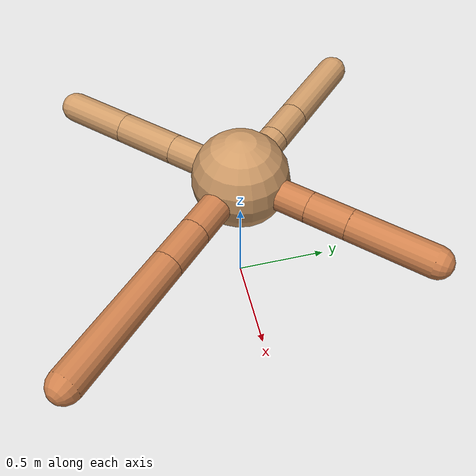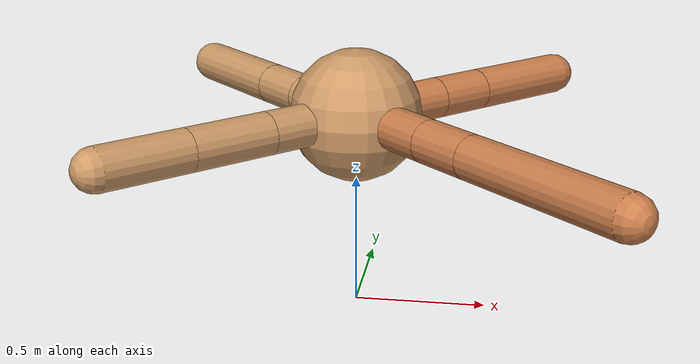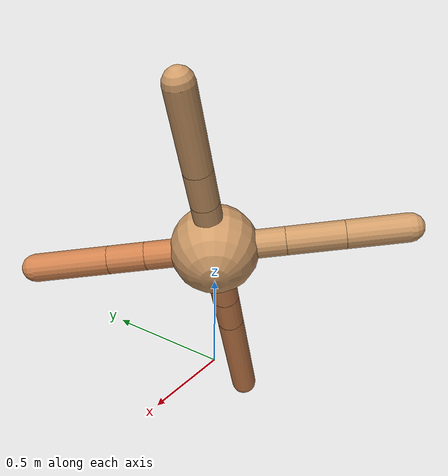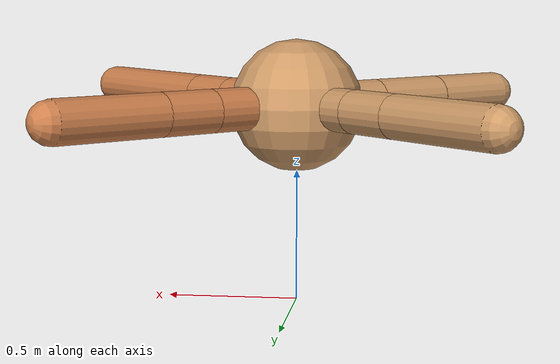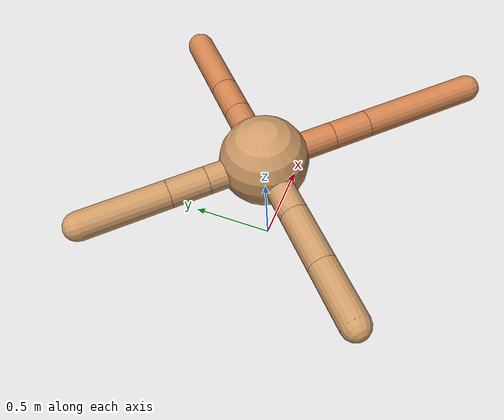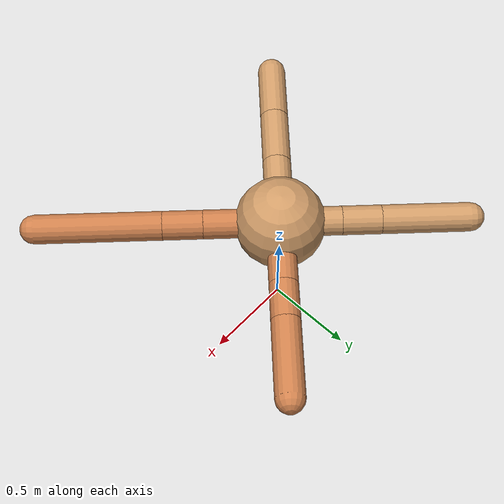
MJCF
<mujoco model="ant">
  <compiler angle="degree" coordinate="local" inertiafromgeom="true" />
  <option integrator="RK4" timestep="0.01" />
  <custom>
    <numeric data="0.0 0.0 0.55 1.0 0.0 0.0 0.0 0.0 1.0 0.0 -1.0 0.0 -1.0 0.0 1.0" name="init_qpos" />
  </custom>
  <default>
    <joint armature="1" damping="1" limited="true" />
    <geom conaffinity="0" condim="3" density="5.0" friction="1.5 0.1 0.1" margin="0.01" rgba="0.8 0.6 0.4 1" />
  </default>
  <worldbody>
    <body name="torso" pos="0 0 0.75">
      <geom name="torso_geom" pos="0 0 0" size="0.25" type="sphere" />

      <body name="front_left_leg" pos="0 0 0">
        <geom fromto="0.0 0.0 0.0 0.2747970285567746 0.2747970285567746 0.0" name="aux_1_geom" size="0.08" type="capsule" rgba=".8 .5 .3 1" />
        <body name="aux_1" pos="0.2747970285567746 0.2747970285567746 0.0">
          <joint axis="0 0 1" name="hip_1" pos="0.0 0.0 0.0" range="-40 40" type="hinge" />
          <geom fromto="0.0 0.0 0.0 0.15086184023053775 0.15086184023053775 0.0" name="left_leg_geom" size="0.08" type="capsule" rgba=".8 .5 .3 1" />
          <body pos="0.15086184023053775 0.15086184023053775 0.0" name="front_left_foot">
            <joint axis="-1 1 0" name="ankle_1" pos="0.0 0.0 0.0" range="30 100" type="hinge" />
            <geom fromto="0.0 0.0 0.0 0.30422491881523667 0.30422491881523667 0.0" name="left_ankle_geom" size="0.08" type="capsule" rgba=".8 .5 .3 1" />
          </body>
        </body>
      </body>
      <body name="front_right_leg" pos="0 0 0">
        <geom fromto="0.0 0.0 0.0 -0.2372047984764219 0.2372047984764219 0.0" name="aux_2_geom" size="0.08" type="capsule" />
        <body name="aux_2" pos="-0.2372047984764219 0.2372047984764219 0.0">
          <joint axis="0 0 1" name="hip_2" pos="0.0 0.0 0.0" range="-40 40" type="hinge" />
          <geom fromto="0.0 0.0 0.0 -0.1523178699243254 0.1523178699243254 0.0" name="right_leg_geom" size="0.08" type="capsule" />
          <body pos="-0.1523178699243254 0.1523178699243254 0.0" name="front_right_foot">
            <joint axis="1 1 0" name="ankle_2" pos="0.0 0.0 0.0" range="-100 -30" type="hinge" />
            <geom fromto="0.0 0.0 0.0 -0.34164186906467675 0.34164186906467675 0.0" name="right_ankle_geom" size="0.08" type="capsule" />
          </body>
        </body>
      </body>
      <body name="left_back_leg" pos="0 0 0">
        <geom fromto="0.0 0.0 0.0 -0.2798326348431 -0.2798326348431 0.0" name="aux_3_geom" size="0.08" type="capsule" />
        <body name="aux_3" pos="-0.2798326348431 -0.2798326348431 0.0">
          <joint axis="0 0 1" name="hip_3" pos="0.0 0.0 0.0" range="-40 40" type="hinge" />
          <geom fromto="0.0 0.0 0.0 -0.2284639056704748 -0.2284639056704748 0.0" name="back_leg_geom" size="0.08" type="capsule" />
          <body pos="-0.2284639056704748 -0.2284639056704748 0.0" name="left_back_foot">
            <joint axis="-1 1 0" name="ankle_3" pos="0.0 0.0 0.0" range="-100 -30" type="hinge" />
            <geom fromto="0.0 0.0 0.0 -0.24108612818695382 -0.24108612818695382 0.0" name="third_ankle_geom" size="0.08" type="capsule" />
          </body>
        </body>
      </body>
      <body name="right_back_leg" pos="0 0 0">
        <geom fromto="0.0 0.0 0.0 0.2958013468858806 -0.2958013468858806 0.0" name="aux_4_geom" size="0.08" type="capsule" rgba=".8 .5 .3 1" />
        <body name="aux_4" pos="0.2958013468858806 -0.2958013468858806 0.0">
          <joint axis="0 0 1" name="hip_4" pos="0.0 0.0 0.0" range="-40 40" type="hinge" />
          <geom fromto="0.0 0.0 0.0 0.1558562225314117 -0.1558562225314117 0.0" name="rightback_leg_geom" size="0.08" type="capsule" rgba=".8 .5 .3 1" />
          <body pos="0.1558562225314117 -0.1558562225314117 0.0" name="right_back_foot">
            <joint axis="1 1 0" name="ankle_4" pos="0.0 0.0 0.0" range="30 100" type="hinge" />
            <geom fromto="0.0 0.0 0.0 0.49020049268456767 -0.49020049268456767 0.0" name="fourth_ankle_geom" size="0.08" type="capsule" rgba=".8 .5 .3 1" />
          </body>
        </body>
      </body>
    </body>
  </worldbody>
  <actuator>
    <motor ctrllimited="true" ctrlrange="-1.0 1.0" joint="hip_4" gear="150" />
    <motor ctrllimited="true" ctrlrange="-1.0 1.0" joint="ankle_4" gear="150" />
    <motor ctrllimited="true" ctrlrange="-1.0 1.0" joint="hip_1" gear="150" />
    <motor ctrllimited="true" ctrlrange="-1.0 1.0" joint="ankle_1" gear="150" />
    <motor ctrllimited="true" ctrlrange="-1.0 1.0" joint="hip_2" gear="150" />
    <motor ctrllimited="true" ctrlrange="-1.0 1.0" joint="ankle_2" gear="150" />
    <motor ctrllimited="true" ctrlrange="-1.0 1.0" joint="hip_3" gear="150" />
    <motor ctrllimited="true" ctrlrange="-1.0 1.0" joint="ankle_3" gear="150" />
  </actuator>
</mujoco>
